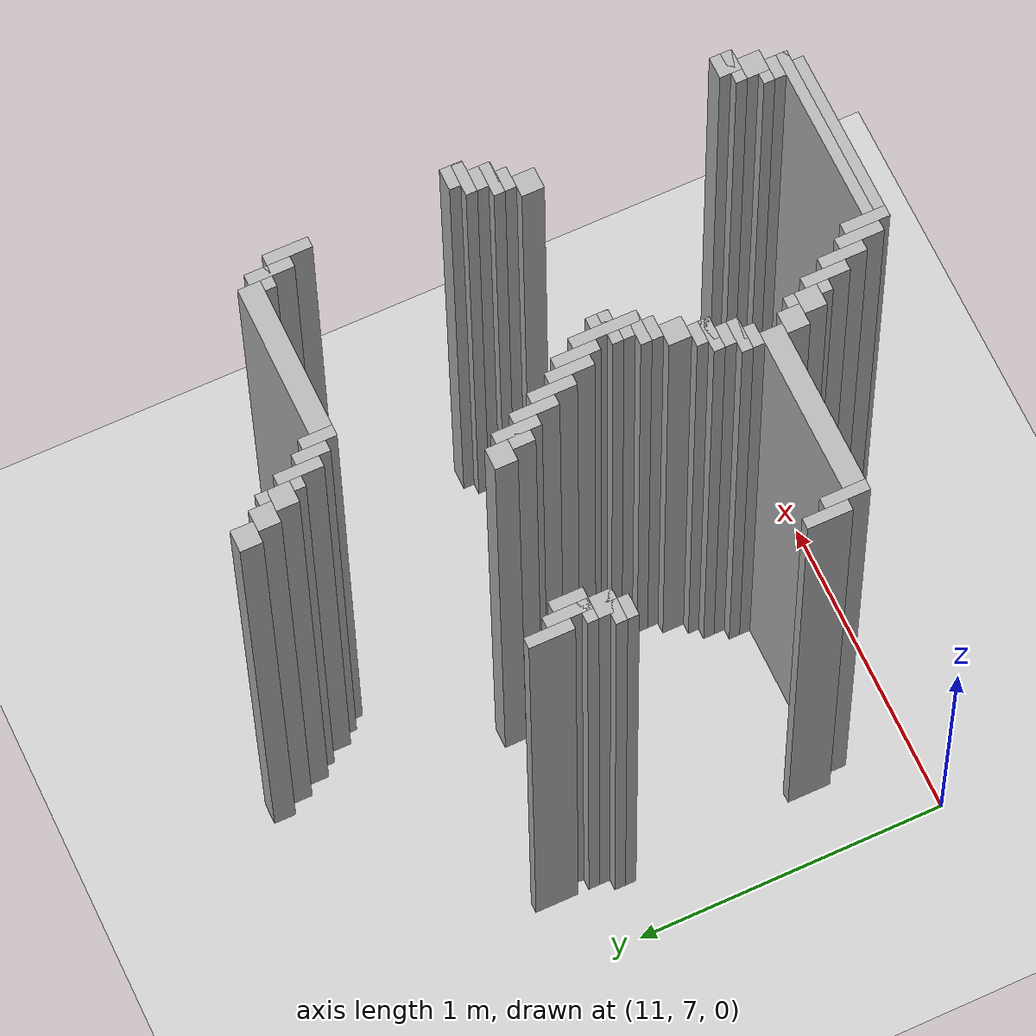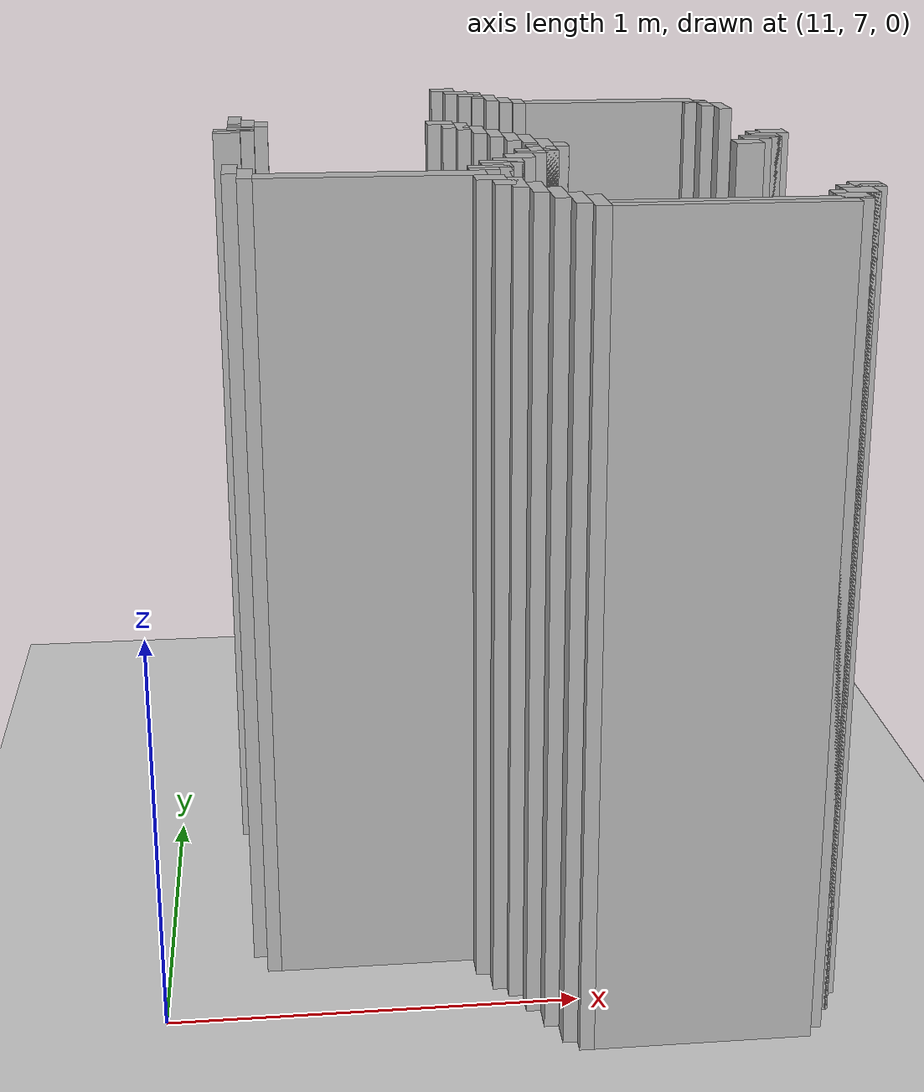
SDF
<sdf version="1.6">
 <world name="slam_world">
  <model name="ground_plane">
   <static>true</static>
   <link name="link">
    <collision name="collision">
     <geometry><plane><normal>0 0 1</normal><size>100 100</size></plane></geometry>
    </collision>
    <visual name="visual">
     <geometry><plane><normal>0 0 1</normal><size>100 100</size></plane></geometry>
     <material>
      <ambient>0.8 0.8 0.8 1</ambient>
      <diffuse>0.8 0.8 0.8 1</diffuse>
      <specular>0.8 0.8 0.8 1</specular>
     </material>
    </visual>
   </link>
  </model>
  <model name="wall_2878">
   <static>true</static>
   <pose>11.832946635730858 8.805104408352667 1.0 0 0 0</pose>
   <link name="link">
    <collision name="collision">
     <geometry><box><size>0.06960556844547564 0.06960556844547564 2.0</size></box></geometry>
    </collision>
    <visual name="visual">
     <geometry><box><size>0.06960556844547564 0.06960556844547564 2.0</size></box></geometry>
     <material><ambient>0.5 0.5 0.5 1</ambient><diffuse>0.7 0.7 0.7 1</diffuse></material>
    </visual>
   </link>
  </model>
  <model name="wall_2891">
   <static>true</static>
   <pose>11.867749419953595 8.735498839907192 1.0 0 0 0</pose>
   <link name="link">
    <collision name="collision">
     <geometry><box><size>0.06960556844547564 0.06960556844547564 2.0</size></box></geometry>
    </collision>
    <visual name="visual">
     <geometry><box><size>0.06960556844547564 0.06960556844547564 2.0</size></box></geometry>
     <material><ambient>0.5 0.5 0.5 1</ambient><diffuse>0.7 0.7 0.7 1</diffuse></material>
    </visual>
   </link>
  </model>
  <model name="wall_2904">
   <static>true</static>
   <pose>11.919953596287703 8.665893271461716 1.0 0 0 0</pose>
   <link name="link">
    <collision name="collision">
     <geometry><box><size>0.03480278422273782 0.13921113689095127 2.0</size></box></geometry>
    </collision>
    <visual name="visual">
     <geometry><box><size>0.03480278422273782 0.13921113689095127 2.0</size></box></geometry>
     <material><ambient>0.5 0.5 0.5 1</ambient><diffuse>0.7 0.7 0.7 1</diffuse></material>
    </visual>
   </link>
  </model>
  <model name="wall_2913">
   <static>true</static>
   <pose>11.902552204176333 8.665893271461716 1.0 0 0 0</pose>
   <link name="link">
    <collision name="collision">
     <geometry><box><size>0.06960556844547564 0.06960556844547564 2.0</size></box></geometry>
    </collision>
    <visual name="visual">
     <geometry><box><size>0.06960556844547564 0.06960556844547564 2.0</size></box></geometry>
     <material><ambient>0.5 0.5 0.5 1</ambient><diffuse>0.7 0.7 0.7 1</diffuse></material>
    </visual>
   </link>
  </model>
  <model name="wall_2926">
   <static>true</static>
   <pose>11.95475638051044 8.596287703016241 1.0 0 0 0</pose>
   <link name="link">
    <collision name="collision">
     <geometry><box><size>0.03480278422273782 0.13921113689095127 2.0</size></box></geometry>
    </collision>
    <visual name="visual">
     <geometry><box><size>0.03480278422273782 0.13921113689095127 2.0</size></box></geometry>
     <material><ambient>0.5 0.5 0.5 1</ambient><diffuse>0.7 0.7 0.7 1</diffuse></material>
    </visual>
   </link>
  </model>
  <model name="wall_2945">
   <static>true</static>
   <pose>11.989559164733178 8.544083526682135 1.0 0 0 0</pose>
   <link name="link">
    <collision name="collision">
     <geometry><box><size>0.03480278422273782 0.10440835266821345 2.0</size></box></geometry>
    </collision>
    <visual name="visual">
     <geometry><box><size>0.03480278422273782 0.10440835266821345 2.0</size></box></geometry>
     <material><ambient>0.5 0.5 0.5 1</ambient><diffuse>0.7 0.7 0.7 1</diffuse></material>
    </visual>
   </link>
  </model>
  <model name="wall_2958">
   <static>true</static>
   <pose>12.024361948955915 8.509280742459396 1.0 0 0 0</pose>
   <link name="link">
    <collision name="collision">
     <geometry><box><size>0.03480278422273782 0.10440835266821345 2.0</size></box></geometry>
    </collision>
    <visual name="visual">
     <geometry><box><size>0.03480278422273782 0.10440835266821345 2.0</size></box></geometry>
     <material><ambient>0.5 0.5 0.5 1</ambient><diffuse>0.7 0.7 0.7 1</diffuse></material>
    </visual>
   </link>
  </model>
  <model name="wall_2970">
   <static>true</static>
   <pose>12.28538283062645 8.491879350348027 1.0 0 0 0</pose>
   <link name="link">
    <collision name="collision">
     <geometry><box><size>0.4872389791183295 0.06960556844547564 2.0</size></box></geometry>
    </collision>
    <visual name="visual">
     <geometry><box><size>0.4872389791183295 0.06960556844547564 2.0</size></box></geometry>
     <material><ambient>0.5 0.5 0.5 1</ambient><diffuse>0.7 0.7 0.7 1</diffuse></material>
    </visual>
   </link>
  </model>
  <model name="wall_2983">
   <static>true</static>
   <pose>12.546403712296984 8.422273781902552 1.0 0 0 0</pose>
   <link name="link">
    <collision name="collision">
     <geometry><box><size>0.03480278422273782 0.13921113689095127 2.0</size></box></geometry>
    </collision>
    <visual name="visual">
     <geometry><box><size>0.03480278422273782 0.13921113689095127 2.0</size></box></geometry>
     <material><ambient>0.5 0.5 0.5 1</ambient><diffuse>0.7 0.7 0.7 1</diffuse></material>
    </visual>
   </link>
  </model>
  <model name="wall_2998">
   <static>true</static>
   <pose>12.529002320185615 8.43967517401392 1.0 0 0 0</pose>
   <link name="link">
    <collision name="collision">
     <geometry><box><size>0.06960556844547564 0.03480278422273782 2.0</size></box></geometry>
    </collision>
    <visual name="visual">
     <geometry><box><size>0.06960556844547564 0.03480278422273782 2.0</size></box></geometry>
     <material><ambient>0.5 0.5 0.5 1</ambient><diffuse>0.7 0.7 0.7 1</diffuse></material>
    </visual>
   </link>
  </model>
  <model name="wall_3013">
   <static>true</static>
   <pose>12.581206496519721 8.352668213457076 1.0 0 0 0</pose>
   <link name="link">
    <collision name="collision">
     <geometry><box><size>0.03480278422273782 0.13921113689095127 2.0</size></box></geometry>
    </collision>
    <visual name="visual">
     <geometry><box><size>0.03480278422273782 0.13921113689095127 2.0</size></box></geometry>
     <material><ambient>0.5 0.5 0.5 1</ambient><diffuse>0.7 0.7 0.7 1</diffuse></material>
    </visual>
   </link>
  </model>
  <model name="wall_3067">
   <static>true</static>
   <pose>11.223897911832946 8.178654292343387 1.0 0 0 0</pose>
   <link name="link">
    <collision name="collision">
     <geometry><box><size>0.03480278422273782 0.13921113689095127 2.0</size></box></geometry>
    </collision>
    <visual name="visual">
     <geometry><box><size>0.03480278422273782 0.13921113689095127 2.0</size></box></geometry>
     <material><ambient>0.5 0.5 0.5 1</ambient><diffuse>0.7 0.7 0.7 1</diffuse></material>
    </visual>
   </link>
  </model>
  <model name="wall_3091">
   <static>true</static>
   <pose>11.258700696055683 8.074245939675174 1.0 0 0 0</pose>
   <link name="link">
    <collision name="collision">
     <geometry><box><size>0.03480278422273782 0.2088167053364269 2.0</size></box></geometry>
    </collision>
    <visual name="visual">
     <geometry><box><size>0.03480278422273782 0.2088167053364269 2.0</size></box></geometry>
     <material><ambient>0.5 0.5 0.5 1</ambient><diffuse>0.7 0.7 0.7 1</diffuse></material>
    </visual>
   </link>
  </model>
  <model name="wall_3105">
   <static>true</static>
   <pose>11.293503480278423 8.091647331786543 1.0 0 0 0</pose>
   <link name="link">
    <collision name="collision">
     <geometry><box><size>0.03480278422273782 0.10440835266821345 2.0</size></box></geometry>
    </collision>
    <visual name="visual">
     <geometry><box><size>0.03480278422273782 0.10440835266821345 2.0</size></box></geometry>
     <material><ambient>0.5 0.5 0.5 1</ambient><diffuse>0.7 0.7 0.7 1</diffuse></material>
    </visual>
   </link>
  </model>
  <model name="wall_3117">
   <static>true</static>
   <pose>11.763341067285383 8.074245939675174 1.0 0 0 0</pose>
   <link name="link">
    <collision name="collision">
     <geometry><box><size>0.06960556844547564 0.06960556844547564 2.0</size></box></geometry>
    </collision>
    <visual name="visual">
     <geometry><box><size>0.06960556844547564 0.06960556844547564 2.0</size></box></geometry>
     <material><ambient>0.5 0.5 0.5 1</ambient><diffuse>0.7 0.7 0.7 1</diffuse></material>
    </visual>
   </link>
  </model>
  <model name="wall_3130">
   <static>true</static>
   <pose>11.258700696055683 8.056844547563804 1.0 0 0 0</pose>
   <link name="link">
    <collision name="collision">
     <geometry><box><size>0.10440835266821345 0.03480278422273782 2.0</size></box></geometry>
    </collision>
    <visual name="visual">
     <geometry><box><size>0.10440835266821345 0.03480278422273782 2.0</size></box></geometry>
     <material><ambient>0.5 0.5 0.5 1</ambient><diffuse>0.7 0.7 0.7 1</diffuse></material>
    </visual>
   </link>
  </model>
  <model name="wall_3131">
   <static>true</static>
   <pose>11.81554524361949 8.004640371229698 1.0 0 0 0</pose>
   <link name="link">
    <collision name="collision">
     <geometry><box><size>0.03480278422273782 0.13921113689095127 2.0</size></box></geometry>
    </collision>
    <visual name="visual">
     <geometry><box><size>0.03480278422273782 0.13921113689095127 2.0</size></box></geometry>
     <material><ambient>0.5 0.5 0.5 1</ambient><diffuse>0.7 0.7 0.7 1</diffuse></material>
    </visual>
   </link>
  </model>
  <model name="wall_3146">
   <static>true</static>
   <pose>11.241299303944315 8.004640371229698 1.0 0 0 0</pose>
   <link name="link">
    <collision name="collision">
     <geometry><box><size>0.06960556844547564 0.06960556844547564 2.0</size></box></geometry>
    </collision>
    <visual name="visual">
     <geometry><box><size>0.06960556844547564 0.06960556844547564 2.0</size></box></geometry>
     <material><ambient>0.5 0.5 0.5 1</ambient><diffuse>0.7 0.7 0.7 1</diffuse></material>
    </visual>
   </link>
  </model>
  <model name="wall_3147">
   <static>true</static>
   <pose>11.79814385150812 8.004640371229698 1.0 0 0 0</pose>
   <link name="link">
    <collision name="collision">
     <geometry><box><size>0.06960556844547564 0.06960556844547564 2.0</size></box></geometry>
    </collision>
    <visual name="visual">
     <geometry><box><size>0.06960556844547564 0.06960556844547564 2.0</size></box></geometry>
     <material><ambient>0.5 0.5 0.5 1</ambient><diffuse>0.7 0.7 0.7 1</diffuse></material>
    </visual>
   </link>
  </model>
  <model name="wall_3162">
   <static>true</static>
   <pose>11.223897911832946 7.987238979118329 1.0 0 0 0</pose>
   <link name="link">
    <collision name="collision">
     <geometry><box><size>0.10440835266821345 0.03480278422273782 2.0</size></box></geometry>
    </collision>
    <visual name="visual">
     <geometry><box><size>0.10440835266821345 0.03480278422273782 2.0</size></box></geometry>
     <material><ambient>0.5 0.5 0.5 1</ambient><diffuse>0.7 0.7 0.7 1</diffuse></material>
    </visual>
   </link>
  </model>
  <model name="wall_3163">
   <static>true</static>
   <pose>11.850348027842227 7.935034802784222 1.0 0 0 0</pose>
   <link name="link">
    <collision name="collision">
     <geometry><box><size>0.03480278422273782 0.13921113689095127 2.0</size></box></geometry>
    </collision>
    <visual name="visual">
     <geometry><box><size>0.03480278422273782 0.13921113689095127 2.0</size></box></geometry>
     <material><ambient>0.5 0.5 0.5 1</ambient><diffuse>0.7 0.7 0.7 1</diffuse></material>
    </visual>
   </link>
  </model>
  <model name="wall_3175">
   <static>true</static>
   <pose>11.206496519721577 7.952436194895592 1.0 0 0 0</pose>
   <link name="link">
    <collision name="collision">
     <geometry><box><size>0.06960556844547564 0.03480278422273782 2.0</size></box></geometry>
    </collision>
    <visual name="visual">
     <geometry><box><size>0.06960556844547564 0.03480278422273782 2.0</size></box></geometry>
     <material><ambient>0.5 0.5 0.5 1</ambient><diffuse>0.7 0.7 0.7 1</diffuse></material>
    </visual>
   </link>
  </model>
  <model name="wall_3190">
   <static>true</static>
   <pose>11.885150812064964 7.865429234338746 1.0 0 0 0</pose>
   <link name="link">
    <collision name="collision">
     <geometry><box><size>0.03480278422273782 0.13921113689095127 2.0</size></box></geometry>
    </collision>
    <visual name="visual">
     <geometry><box><size>0.03480278422273782 0.13921113689095127 2.0</size></box></geometry>
     <material><ambient>0.5 0.5 0.5 1</ambient><diffuse>0.7 0.7 0.7 1</diffuse></material>
    </visual>
   </link>
  </model>
  <model name="wall_3206">
   <static>true</static>
   <pose>11.919953596287703 7.795823665893272 1.0 0 0 0</pose>
   <link name="link">
    <collision name="collision">
     <geometry><box><size>0.03480278422273782 0.13921113689095127 2.0</size></box></geometry>
    </collision>
    <visual name="visual">
     <geometry><box><size>0.03480278422273782 0.13921113689095127 2.0</size></box></geometry>
     <material><ambient>0.5 0.5 0.5 1</ambient><diffuse>0.7 0.7 0.7 1</diffuse></material>
    </visual>
   </link>
  </model>
  <model name="wall_3207">
   <static>true</static>
   <pose>12.59860788863109 7.830626450116009 1.0 0 0 0</pose>
   <link name="link">
    <collision name="collision">
     <geometry><box><size>0.06960556844547564 0.06960556844547564 2.0</size></box></geometry>
    </collision>
    <visual name="visual">
     <geometry><box><size>0.06960556844547564 0.06960556844547564 2.0</size></box></geometry>
     <material><ambient>0.5 0.5 0.5 1</ambient><diffuse>0.7 0.7 0.7 1</diffuse></material>
    </visual>
   </link>
  </model>
  <model name="wall_3222">
   <static>true</static>
   <pose>11.95475638051044 7.761020881670533 1.0 0 0 0</pose>
   <link name="link">
    <collision name="collision">
     <geometry><box><size>0.03480278422273782 0.13921113689095127 2.0</size></box></geometry>
    </collision>
    <visual name="visual">
     <geometry><box><size>0.03480278422273782 0.13921113689095127 2.0</size></box></geometry>
     <material><ambient>0.5 0.5 0.5 1</ambient><diffuse>0.7 0.7 0.7 1</diffuse></material>
    </visual>
   </link>
  </model>
  <model name="wall_3223">
   <static>true</static>
   <pose>12.581206496519721 7.81322505800464 1.0 0 0 0</pose>
   <link name="link">
    <collision name="collision">
     <geometry><box><size>0.10440835266821345 0.03480278422273782 2.0</size></box></geometry>
    </collision>
    <visual name="visual">
     <geometry><box><size>0.10440835266821345 0.03480278422273782 2.0</size></box></geometry>
     <material><ambient>0.5 0.5 0.5 1</ambient><diffuse>0.7 0.7 0.7 1</diffuse></material>
    </visual>
   </link>
  </model>
  <model name="wall_3233">
   <static>true</static>
   <pose>12.563805104408353 7.761020881670533 1.0 0 0 0</pose>
   <link name="link">
    <collision name="collision">
     <geometry><box><size>0.06960556844547564 0.06960556844547564 2.0</size></box></geometry>
    </collision>
    <visual name="visual">
     <geometry><box><size>0.06960556844547564 0.06960556844547564 2.0</size></box></geometry>
     <material><ambient>0.5 0.5 0.5 1</ambient><diffuse>0.7 0.7 0.7 1</diffuse></material>
    </visual>
   </link>
  </model>
  <model name="wall_3247">
   <static>true</static>
   <pose>11.989559164733178 7.65661252900232 1.0 0 0 0</pose>
   <link name="link">
    <collision name="collision">
     <geometry><box><size>0.03480278422273782 0.2088167053364269 2.0</size></box></geometry>
    </collision>
    <visual name="visual">
     <geometry><box><size>0.03480278422273782 0.2088167053364269 2.0</size></box></geometry>
     <material><ambient>0.5 0.5 0.5 1</ambient><diffuse>0.7 0.7 0.7 1</diffuse></material>
    </visual>
   </link>
  </model>
  <model name="wall_3248">
   <static>true</static>
   <pose>12.546403712296984 7.743619489559165 1.0 0 0 0</pose>
   <link name="link">
    <collision name="collision">
     <geometry><box><size>0.10440835266821345 0.03480278422273782 2.0</size></box></geometry>
    </collision>
    <visual name="visual">
     <geometry><box><size>0.10440835266821345 0.03480278422273782 2.0</size></box></geometry>
     <material><ambient>0.5 0.5 0.5 1</ambient><diffuse>0.7 0.7 0.7 1</diffuse></material>
    </visual>
   </link>
  </model>
  <model name="wall_3258">
   <static>true</static>
   <pose>12.529002320185615 7.708816705336426 1.0 0 0 0</pose>
   <link name="link">
    <collision name="collision">
     <geometry><box><size>0.06960556844547564 0.03480278422273782 2.0</size></box></geometry>
    </collision>
    <visual name="visual">
     <geometry><box><size>0.06960556844547564 0.03480278422273782 2.0</size></box></geometry>
     <material><ambient>0.5 0.5 0.5 1</ambient><diffuse>0.7 0.7 0.7 1</diffuse></material>
    </visual>
   </link>
  </model>
  <model name="wall_3272">
   <static>true</static>
   <pose>12.024361948955915 7.65661252900232 1.0 0 0 0</pose>
   <link name="link">
    <collision name="collision">
     <geometry><box><size>0.03480278422273782 0.06960556844547564 2.0</size></box></geometry>
    </collision>
    <visual name="visual">
     <geometry><box><size>0.03480278422273782 0.06960556844547564 2.0</size></box></geometry>
     <material><ambient>0.5 0.5 0.5 1</ambient><diffuse>0.7 0.7 0.7 1</diffuse></material>
    </visual>
   </link>
  </model>
  <model name="wall_3273">
   <static>true</static>
   <pose>12.494199535962876 7.65661252900232 1.0 0 0 0</pose>
   <link name="link">
    <collision name="collision">
     <geometry><box><size>0.06960556844547564 0.06960556844547564 2.0</size></box></geometry>
    </collision>
    <visual name="visual">
     <geometry><box><size>0.06960556844547564 0.06960556844547564 2.0</size></box></geometry>
     <material><ambient>0.5 0.5 0.5 1</ambient><diffuse>0.7 0.7 0.7 1</diffuse></material>
    </visual>
   </link>
  </model>
  <model name="wall_3287">
   <static>true</static>
   <pose>11.989559164733178 7.6392111368909505 1.0 0 0 0</pose>
   <link name="link">
    <collision name="collision">
     <geometry><box><size>0.10440835266821345 0.03480278422273782 2.0</size></box></geometry>
    </collision>
    <visual name="visual">
     <geometry><box><size>0.10440835266821345 0.03480278422273782 2.0</size></box></geometry>
     <material><ambient>0.5 0.5 0.5 1</ambient><diffuse>0.7 0.7 0.7 1</diffuse></material>
    </visual>
   </link>
  </model>
  <model name="wall_3302">
   <static>true</static>
   <pose>11.97215777262181 7.587006960556844 1.0 0 0 0</pose>
   <link name="link">
    <collision name="collision">
     <geometry><box><size>0.06960556844547564 0.06960556844547564 2.0</size></box></geometry>
    </collision>
    <visual name="visual">
     <geometry><box><size>0.06960556844547564 0.06960556844547564 2.0</size></box></geometry>
     <material><ambient>0.5 0.5 0.5 1</ambient><diffuse>0.7 0.7 0.7 1</diffuse></material>
    </visual>
   </link>
  </model>
  <model name="wall_3318">
   <static>true</static>
   <pose>11.95475638051044 7.569605568445476 1.0 0 0 0</pose>
   <link name="link">
    <collision name="collision">
     <geometry><box><size>0.10440835266821345 0.03480278422273782 2.0</size></box></geometry>
    </collision>
    <visual name="visual">
     <geometry><box><size>0.10440835266821345 0.03480278422273782 2.0</size></box></geometry>
     <material><ambient>0.5 0.5 0.5 1</ambient><diffuse>0.7 0.7 0.7 1</diffuse></material>
    </visual>
   </link>
  </model>
  <model name="wall_3329">
   <static>true</static>
   <pose>11.937354988399072 7.534802784222737 1.0 0 0 0</pose>
   <link name="link">
    <collision name="collision">
     <geometry><box><size>0.06960556844547564 0.03480278422273782 2.0</size></box></geometry>
    </collision>
    <visual name="visual">
     <geometry><box><size>0.06960556844547564 0.03480278422273782 2.0</size></box></geometry>
     <material><ambient>0.5 0.5 0.5 1</ambient><diffuse>0.7 0.7 0.7 1</diffuse></material>
    </visual>
   </link>
  </model>
  <model name="wall_3345">
   <static>true</static>
   <pose>11.902552204176333 7.48259860788863 1.0 0 0 0</pose>
   <link name="link">
    <collision name="collision">
     <geometry><box><size>0.06960556844547564 0.06960556844547564 2.0</size></box></geometry>
    </collision>
    <visual name="visual">
     <geometry><box><size>0.06960556844547564 0.06960556844547564 2.0</size></box></geometry>
     <material><ambient>0.5 0.5 0.5 1</ambient><diffuse>0.7 0.7 0.7 1</diffuse></material>
    </visual>
   </link>
  </model>
  <model name="wall_3361">
   <static>true</static>
   <pose>11.867749419953595 7.412993039443156 1.0 0 0 0</pose>
   <link name="link">
    <collision name="collision">
     <geometry><box><size>0.06960556844547564 0.06960556844547564 2.0</size></box></geometry>
    </collision>
    <visual name="visual">
     <geometry><box><size>0.06960556844547564 0.06960556844547564 2.0</size></box></geometry>
     <material><ambient>0.5 0.5 0.5 1</ambient><diffuse>0.7 0.7 0.7 1</diffuse></material>
    </visual>
   </link>
  </model>
  <model name="wall_3376">
   <static>true</static>
   <pose>11.223897911832946 7.34338747099768 1.0 0 0 0</pose>
   <link name="link">
    <collision name="collision">
     <geometry><box><size>0.03480278422273782 0.13921113689095127 2.0</size></box></geometry>
    </collision>
    <visual name="visual">
     <geometry><box><size>0.03480278422273782 0.13921113689095127 2.0</size></box></geometry>
     <material><ambient>0.5 0.5 0.5 1</ambient><diffuse>0.7 0.7 0.7 1</diffuse></material>
    </visual>
   </link>
  </model>
  <model name="wall_3377">
   <static>true</static>
   <pose>11.850348027842227 7.395591647331786 1.0 0 0 0</pose>
   <link name="link">
    <collision name="collision">
     <geometry><box><size>0.10440835266821345 0.03480278422273782 2.0</size></box></geometry>
    </collision>
    <visual name="visual">
     <geometry><box><size>0.10440835266821345 0.03480278422273782 2.0</size></box></geometry>
     <material><ambient>0.5 0.5 0.5 1</ambient><diffuse>0.7 0.7 0.7 1</diffuse></material>
    </visual>
   </link>
  </model>
  <model name="wall_3387">
   <static>true</static>
   <pose>11.832946635730858 7.34338747099768 1.0 0 0 0</pose>
   <link name="link">
    <collision name="collision">
     <geometry><box><size>0.06960556844547564 0.06960556844547564 2.0</size></box></geometry>
    </collision>
    <visual name="visual">
     <geometry><box><size>0.06960556844547564 0.06960556844547564 2.0</size></box></geometry>
     <material><ambient>0.5 0.5 0.5 1</ambient><diffuse>0.7 0.7 0.7 1</diffuse></material>
    </visual>
   </link>
  </model>
  <model name="wall_3401">
   <static>true</static>
   <pose>11.258700696055683 7.273781902552204 1.0 0 0 0</pose>
   <link name="link">
    <collision name="collision">
     <geometry><box><size>0.03480278422273782 0.13921113689095127 2.0</size></box></geometry>
    </collision>
    <visual name="visual">
     <geometry><box><size>0.03480278422273782 0.13921113689095127 2.0</size></box></geometry>
     <material><ambient>0.5 0.5 0.5 1</ambient><diffuse>0.7 0.7 0.7 1</diffuse></material>
    </visual>
   </link>
  </model>
  <model name="wall_3402">
   <static>true</static>
   <pose>11.81554524361949 7.32598607888631 1.0 0 0 0</pose>
   <link name="link">
    <collision name="collision">
     <geometry><box><size>0.10440835266821345 0.03480278422273782 2.0</size></box></geometry>
    </collision>
    <visual name="visual">
     <geometry><box><size>0.10440835266821345 0.03480278422273782 2.0</size></box></geometry>
     <material><ambient>0.5 0.5 0.5 1</ambient><diffuse>0.7 0.7 0.7 1</diffuse></material>
    </visual>
   </link>
  </model>
  <model name="wall_3412">
   <static>true</static>
   <pose>11.79814385150812 7.291183294663573 1.0 0 0 0</pose>
   <link name="link">
    <collision name="collision">
     <geometry><box><size>0.06960556844547564 0.03480278422273782 2.0</size></box></geometry>
    </collision>
    <visual name="visual">
     <geometry><box><size>0.06960556844547564 0.03480278422273782 2.0</size></box></geometry>
     <material><ambient>0.5 0.5 0.5 1</ambient><diffuse>0.7 0.7 0.7 1</diffuse></material>
    </visual>
   </link>
  </model>
  <model name="wall_3423">
   <static>true</static>
   <pose>11.537122969837586 7.238979118329466 1.0 0 0 0</pose>
   <link name="link">
    <collision name="collision">
     <geometry><box><size>0.5220417633410672 0.06960556844547564 2.0</size></box></geometry>
    </collision>
    <visual name="visual">
     <geometry><box><size>0.5220417633410672 0.06960556844547564 2.0</size></box></geometry>
     <material><ambient>0.5 0.5 0.5 1</ambient><diffuse>0.7 0.7 0.7 1</diffuse></material>
    </visual>
   </link>
  </model>
  <model name="wall_3435">
   <static>true</static>
   <pose>11.79814385150812 7.16937354988399 1.0 0 0 0</pose>
   <link name="link">
    <collision name="collision">
     <geometry><box><size>0.06960556844547564 0.06960556844547564 2.0</size></box></geometry>
    </collision>
    <visual name="visual">
     <geometry><box><size>0.06960556844547564 0.06960556844547564 2.0</size></box></geometry>
     <material><ambient>0.5 0.5 0.5 1</ambient><diffuse>0.7 0.7 0.7 1</diffuse></material>
    </visual>
   </link>
  </model>
  <model name="wall_3447">
   <static>true</static>
   <pose>11.850348027842227 7.099767981438514 1.0 0 0 0</pose>
   <link name="link">
    <collision name="collision">
     <geometry><box><size>0.03480278422273782 0.13921113689095127 2.0</size></box></geometry>
    </collision>
    <visual name="visual">
     <geometry><box><size>0.03480278422273782 0.13921113689095127 2.0</size></box></geometry>
     <material><ambient>0.5 0.5 0.5 1</ambient><diffuse>0.7 0.7 0.7 1</diffuse></material>
    </visual>
   </link>
  </model>
  <model name="wall_3459">
   <static>true</static>
   <pose>11.832946635730858 7.099767981438514 1.0 0 0 0</pose>
   <link name="link">
    <collision name="collision">
     <geometry><box><size>0.06960556844547564 0.06960556844547564 2.0</size></box></geometry>
    </collision>
    <visual name="visual">
     <geometry><box><size>0.06960556844547564 0.06960556844547564 2.0</size></box></geometry>
     <material><ambient>0.5 0.5 0.5 1</ambient><diffuse>0.7 0.7 0.7 1</diffuse></material>
    </visual>
   </link>
  </model>
  <model name="wall_3471">
   <static>true</static>
   <pose>11.885150812064964 7.03016241299304 1.0 0 0 0</pose>
   <link name="link">
    <collision name="collision">
     <geometry><box><size>0.03480278422273782 0.13921113689095127 2.0</size></box></geometry>
    </collision>
    <visual name="visual">
     <geometry><box><size>0.03480278422273782 0.13921113689095127 2.0</size></box></geometry>
     <material><ambient>0.5 0.5 0.5 1</ambient><diffuse>0.7 0.7 0.7 1</diffuse></material>
    </visual>
   </link>
  </model>
  <model name="wall_3490">
   <static>true</static>
   <pose>11.919953596287703 6.960556844547564 1.0 0 0 0</pose>
   <link name="link">
    <collision name="collision">
     <geometry><box><size>0.03480278422273782 0.13921113689095127 2.0</size></box></geometry>
    </collision>
    <visual name="visual">
     <geometry><box><size>0.03480278422273782 0.13921113689095127 2.0</size></box></geometry>
     <material><ambient>0.5 0.5 0.5 1</ambient><diffuse>0.7 0.7 0.7 1</diffuse></material>
    </visual>
   </link>
  </model>
  <model name="wall_3491">
   <static>true</static>
   <pose>12.59860788863109 6.995359628770301 1.0 0 0 0</pose>
   <link name="link">
    <collision name="collision">
     <geometry><box><size>0.06960556844547564 0.06960556844547564 2.0</size></box></geometry>
    </collision>
    <visual name="visual">
     <geometry><box><size>0.06960556844547564 0.06960556844547564 2.0</size></box></geometry>
     <material><ambient>0.5 0.5 0.5 1</ambient><diffuse>0.7 0.7 0.7 1</diffuse></material>
    </visual>
   </link>
  </model>
  <model name="wall_3499">
   <static>true</static>
   <pose>12.581206496519721 6.977958236658933 1.0 0 0 0</pose>
   <link name="link">
    <collision name="collision">
     <geometry><box><size>0.10440835266821345 0.03480278422273782 2.0</size></box></geometry>
    </collision>
    <visual name="visual">
     <geometry><box><size>0.10440835266821345 0.03480278422273782 2.0</size></box></geometry>
     <material><ambient>0.5 0.5 0.5 1</ambient><diffuse>0.7 0.7 0.7 1</diffuse></material>
    </visual>
   </link>
  </model>
  <model name="wall_3509">
   <static>true</static>
   <pose>11.95475638051044 6.890951276102088 1.0 0 0 0</pose>
   <link name="link">
    <collision name="collision">
     <geometry><box><size>0.03480278422273782 0.13921113689095127 2.0</size></box></geometry>
    </collision>
    <visual name="visual">
     <geometry><box><size>0.03480278422273782 0.13921113689095127 2.0</size></box></geometry>
     <material><ambient>0.5 0.5 0.5 1</ambient><diffuse>0.7 0.7 0.7 1</diffuse></material>
    </visual>
   </link>
  </model>
  <model name="wall_3510">
   <static>true</static>
   <pose>12.563805104408353 6.9257540603248255 1.0 0 0 0</pose>
   <link name="link">
    <collision name="collision">
     <geometry><box><size>0.06960556844547564 0.06960556844547564 2.0</size></box></geometry>
    </collision>
    <visual name="visual">
     <geometry><box><size>0.06960556844547564 0.06960556844547564 2.0</size></box></geometry>
     <material><ambient>0.5 0.5 0.5 1</ambient><diffuse>0.7 0.7 0.7 1</diffuse></material>
    </visual>
   </link>
  </model>
  <model name="wall_3521">
   <static>true</static>
   <pose>11.989559164733178 6.85614849187935 1.0 0 0 0</pose>
   <link name="link">
    <collision name="collision">
     <geometry><box><size>0.03480278422273782 0.13921113689095127 2.0</size></box></geometry>
    </collision>
    <visual name="visual">
     <geometry><box><size>0.03480278422273782 0.13921113689095127 2.0</size></box></geometry>
     <material><ambient>0.5 0.5 0.5 1</ambient><diffuse>0.7 0.7 0.7 1</diffuse></material>
    </visual>
   </link>
  </model>
  <model name="wall_3522">
   <static>true</static>
   <pose>12.546403712296984 6.908352668213457 1.0 0 0 0</pose>
   <link name="link">
    <collision name="collision">
     <geometry><box><size>0.10440835266821345 0.03480278422273782 2.0</size></box></geometry>
    </collision>
    <visual name="visual">
     <geometry><box><size>0.10440835266821345 0.03480278422273782 2.0</size></box></geometry>
     <material><ambient>0.5 0.5 0.5 1</ambient><diffuse>0.7 0.7 0.7 1</diffuse></material>
    </visual>
   </link>
  </model>
  <model name="wall_3530">
   <static>true</static>
   <pose>12.529002320185615 6.85614849187935 1.0 0 0 0</pose>
   <link name="link">
    <collision name="collision">
     <geometry><box><size>0.06960556844547564 0.06960556844547564 2.0</size></box></geometry>
    </collision>
    <visual name="visual">
     <geometry><box><size>0.06960556844547564 0.06960556844547564 2.0</size></box></geometry>
     <material><ambient>0.5 0.5 0.5 1</ambient><diffuse>0.7 0.7 0.7 1</diffuse></material>
    </visual>
   </link>
  </model>
  <model name="wall_3543">
   <static>true</static>
   <pose>12.28538283062645 6.838747099767981 1.0 0 0 0</pose>
   <link name="link">
    <collision name="collision">
     <geometry><box><size>0.5568445475638051 0.03480278422273782 2.0</size></box></geometry>
    </collision>
    <visual name="visual">
     <geometry><box><size>0.5568445475638051 0.03480278422273782 2.0</size></box></geometry>
     <material><ambient>0.5 0.5 0.5 1</ambient><diffuse>0.7 0.7 0.7 1</diffuse></material>
    </visual>
   </link>
  </model>
  <model name="wall_3551">
   <static>true</static>
   <pose>12.267981438515081 6.803944315545244 1.0 0 0 0</pose>
   <link name="link">
    <collision name="collision">
     <geometry><box><size>0.5220417633410672 0.03480278422273782 2.0</size></box></geometry>
    </collision>
    <visual name="visual">
     <geometry><box><size>0.5220417633410672 0.03480278422273782 2.0</size></box></geometry>
     <material><ambient>0.5 0.5 0.5 1</ambient><diffuse>0.7 0.7 0.7 1</diffuse></material>
    </visual>
   </link>
  </model>
 </world>
</sdf>
